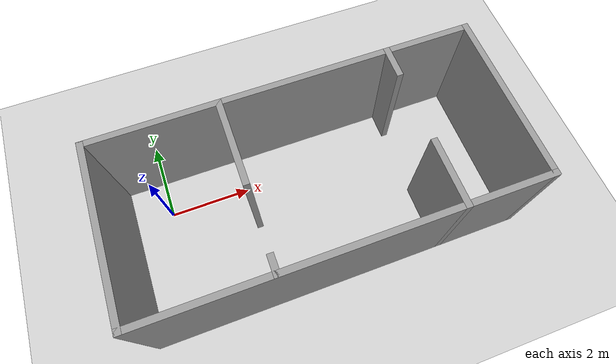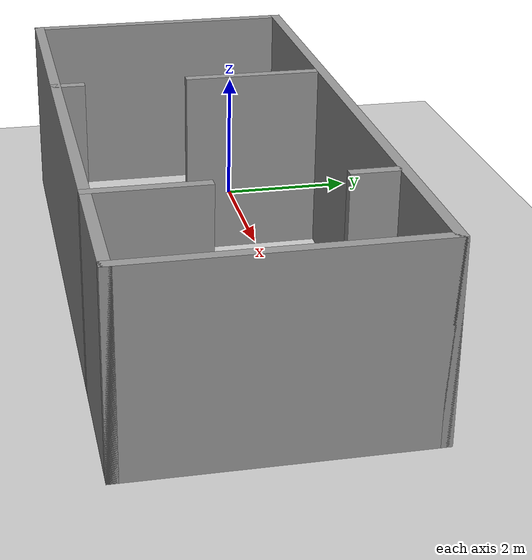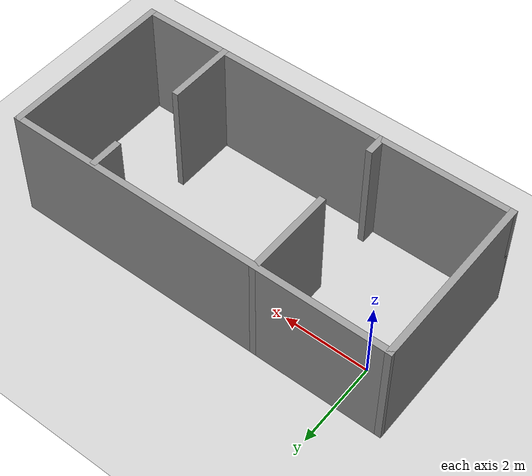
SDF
<?xml version="1.0" ?>
<sdf version='1.4'>
  <world name='default'>
    <!-- A global light source -->
    <include>
      <uri>model://sun</uri>
    </include>

    <!-- A ground plane -->
    <include>
      <uri>model://ground_plane</uri>
    </include>
    <include>
      <uri>model://asphalt_plane</uri>
    </include>

    <physics name='default_physics' default='0' type='ode'>
      <gravity>0 0 -9.8066</gravity>
      <max_step_size>0.004</max_step_size>
      <real_time_factor>1</real_time_factor>
      <real_time_update_rate>250</real_time_update_rate>
      <magnetic_field>6.0e-6 2.3e-5 -4.2e-5</magnetic_field>
      <ode>
        <solver>
          <type>quick</type>
          <iters>10</iters>
          <sor>1.3</sor>
          <use_dynamic_moi_rescaling>0</use_dynamic_moi_rescaling>
        </solver>
        <constraints>
          <cfm>0</cfm>
          <erp>0.2</erp>
          <contact_max_correcting_vel>100</contact_max_correcting_vel>
          <contact_surface_layer>0.001</contact_surface_layer>
        </constraints>
      </ode>
    </physics>

    <!-- A turtlebot symbol -->
    <include>
      <uri>model://bcsh</uri>
      <scale>1 1 1</scale>
      <pose>3.5 -1 0 0 0 -1.57</pose>
    </include>

  </world>
</sdf>

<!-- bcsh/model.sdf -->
<sdf version='1.6'>
  <model name='bcsh'>
    <pose frame=''>0 3.5 0 0 -0 0</pose>
    <link name='Wall_0'>
      <collision name='Wall_0_Collision'>
        <geometry>
          <box>
            <size>9.15 0.15 3</size>
          </box>
        </geometry>
        <pose frame=''>0 0 1.25 0 -0 0</pose>
      </collision>
      <visual name='Wall_0_Visual'>
        <pose frame=''>0 0 1.25 0 -0 0</pose>
        <geometry>
          <box>
            <size>9.15 0.15 3</size>
          </box>
        </geometry>
        <material>
          <script>
            <uri>file://media/materials/scripts/gazebo.material</uri>
            <name>Gazebo/Grey</name>
          </script>
          <ambient>1 1 1 1</ambient>
        </material>
        <meta>
          <layer>0</layer>
        </meta>
      </visual>
      <pose frame=''>-2 -0 0 0 -0 1.5708</pose>
    </link>
    <link name='Wall_10'>
      <collision name='Wall_10_Collision'>
        <geometry>
          <box>
            <size>0.5 0.15 3</size>
          </box>
        </geometry>
        <pose frame=''>0 0 1.25 0 -0 0</pose>
      </collision>
      <visual name='Wall_10_Visual'>
        <pose frame=''>0 0 1.25 0 -0 0</pose>
        <geometry>
          <box>
            <size>0.5 0.15 3</size>
          </box>
        </geometry>
        <material>
          <script>
            <uri>file://media/materials/scripts/gazebo.material</uri>
            <name>Gazebo/Grey</name>
          </script>
          <ambient>1 1 1 1</ambient>
        </material>
        <meta>
          <layer>0</layer>
        </meta>
      </visual>
      <pose frame=''>1.825 -1.5 0 0 -0 0</pose>
    </link>
    <link name='Wall_12'>
      <collision name='Wall_12_Collision'>
        <geometry>
          <box>
            <size>0.8 0.15 3</size>
          </box>
        </geometry>
        <pose frame=''>0 0 1.25 0 -0 0</pose>
      </collision>
      <visual name='Wall_12_Visual'>
        <pose frame=''>0 0 1.25 0 -0 0</pose>
        <geometry>
          <box>
            <size>0.8 0.15 3</size>
          </box>
        </geometry>
        <material>
          <script>
            <uri>file://media/materials/scripts/gazebo.material</uri>
            <name>Gazebo/Grey</name>
          </script>
          <ambient>1 1 1 1</ambient>
        </material>
        <meta>
          <layer>0</layer>
        </meta>
      </visual>
      <pose frame=''>-1.675 2.5 0 0 -0 0</pose>
    </link>
    <link name='Wall_14'>
      <collision name='Wall_14_Collision'>
        <geometry>
          <box>
            <size>1.65 0.15 3</size>
          </box>
        </geometry>
        <pose frame=''>0 0 1.25 0 -0 0</pose>
      </collision>
      <visual name='Wall_14_Visual'>
        <pose frame=''>0 0 1.25 0 -0 0</pose>
        <geometry>
          <box>
            <size>1.65 0.15 3</size>
          </box>
        </geometry>
        <material>
          <script>
            <uri>file://media/materials/scripts/gazebo.material</uri>
            <name>Gazebo/Grey</name>
          </script>
          <ambient>1 1 1 1</ambient>
        </material>
        <meta>
          <layer>0</layer>
        </meta>
      </visual>
      <pose frame=''>1.25 2.5 0 0 -0 0</pose>
    </link>
    <link name='Wall_2'>
      <collision name='Wall_2_Collision'>
        <geometry>
          <box>
            <size>4.15 0.15 3</size>
          </box>
        </geometry>
        <pose frame=''>0 0 1.25 0 -0 0</pose>
      </collision>
      <visual name='Wall_2_Visual'>
        <pose frame=''>0 0 1.25 0 -0 0</pose>
        <geometry>
          <box>
            <size>4.15 0.15 3</size>
          </box>
        </geometry>
        <material>
          <script>
            <uri>file://media/materials/scripts/gazebo.material</uri>
            <name>Gazebo/Grey</name>
          </script>
          <ambient>1 1 1 1</ambient>
        </material>
        <meta>
          <layer>0</layer>
        </meta>
      </visual>
      <pose frame=''>0 -4.5 0 0 -0 0</pose>
    </link>
    <link name='Wall_4'>
      <collision name='Wall_4_Collision'>
        <geometry>
          <box>
            <size>9.15 0.15 3</size>
          </box>
        </geometry>
        <pose frame=''>0 0 1.25 0 -0 0</pose>
      </collision>
      <visual name='Wall_4_Visual'>
        <pose frame=''>0 0 1.25 0 -0 0</pose>
        <geometry>
          <box>
            <size>9.15 0.15 3</size>
          </box>
        </geometry>
        <material>
          <script>
            <uri>file://media/materials/scripts/gazebo.material</uri>
            <name>Gazebo/Grey</name>
          </script>
          <ambient>1 1 1 1</ambient>
        </material>
        <meta>
          <layer>0</layer>
        </meta>
      </visual>
      <pose frame=''>2 -0 0 0 -0 1.5708</pose>
    </link>
    <link name='Wall_6'>
      <collision name='Wall_6_Collision'>
        <geometry>
          <box>
            <size>4.15 0.15 3</size>
          </box>
        </geometry>
        <pose frame=''>0 0 1.25 0 -0 0</pose>
      </collision>
      <visual name='Wall_6_Visual'>
        <pose frame=''>0 0 1.25 0 -0 0</pose>
        <geometry>
          <box>
            <size>4.15 0.15 3</size>
          </box>
        </geometry>
        <material>
          <script>
            <uri>file://media/materials/scripts/gazebo.material</uri>
            <name>Gazebo/Grey</name>
          </script>
          <ambient>1 1 1 1</ambient>
        </material>
        <meta>
          <layer>0</layer>
        </meta>
      </visual>
      <pose frame=''>0 4.5 0 0 -0 0</pose>
    </link>
    <link name='Wall_8'>
      <collision name='Wall_8_Collision'>
        <geometry>
          <box>
            <size>2.15 0.15 3</size>
          </box>
        </geometry>
        <pose frame=''>0 0 1.25 0 -0 0</pose>
      </collision>
      <visual name='Wall_8_Visual'>
        <pose frame=''>0 0 1.25 0 -0 0</pose>
        <geometry>
          <box>
            <size>2.15 0.15 3</size>
          </box>
        </geometry>
        <material>
          <script>
            <uri>file://media/materials/scripts/gazebo.material</uri>
            <name>Gazebo/Grey</name>
          </script>
          <ambient>1 1 1 1</ambient>
        </material>
        <meta>
          <layer>0</layer>
        </meta>
      </visual>
      <pose frame=''>-1 -1.5 0 0 -0 0</pose>
    </link>
    <static>1</static>
  </model>
</sdf>
